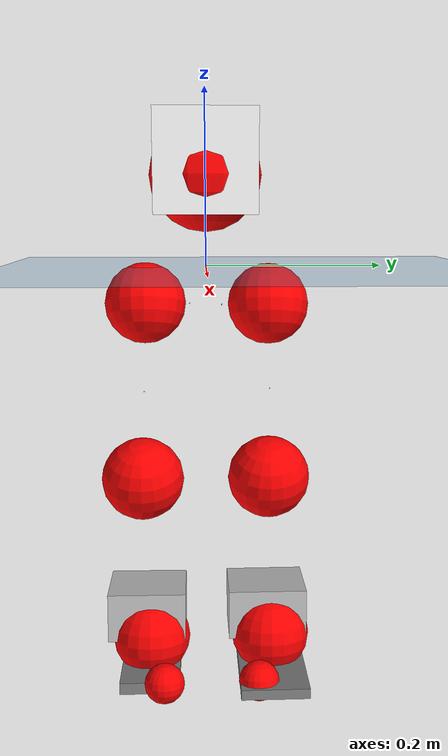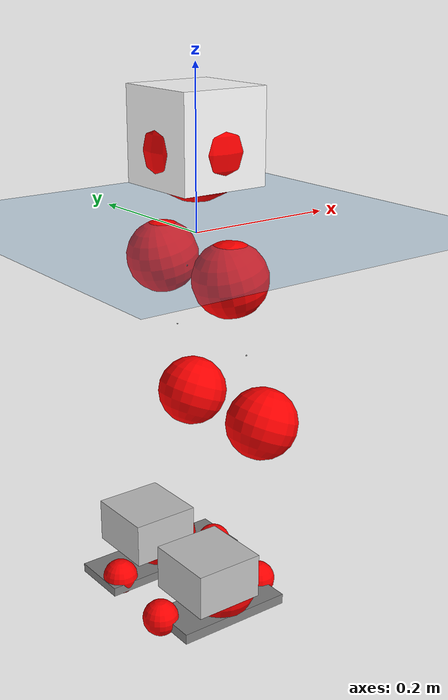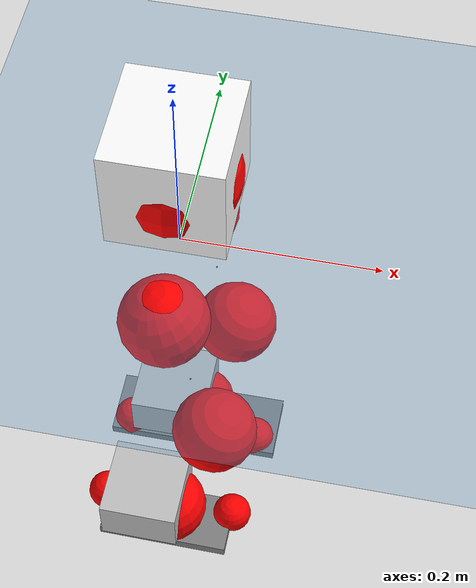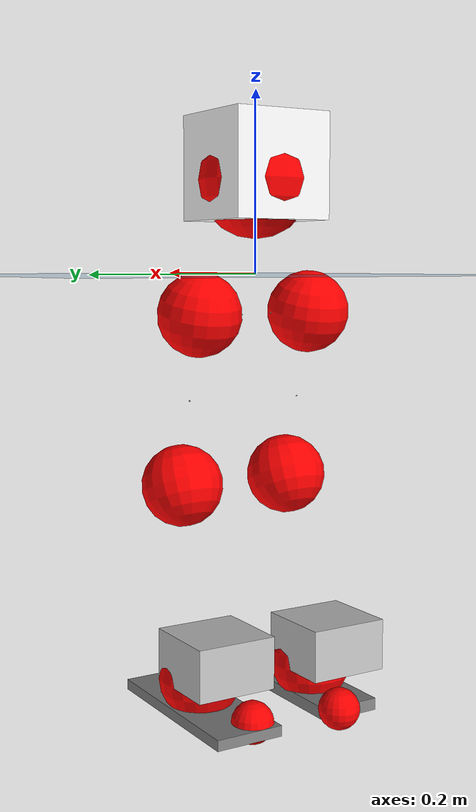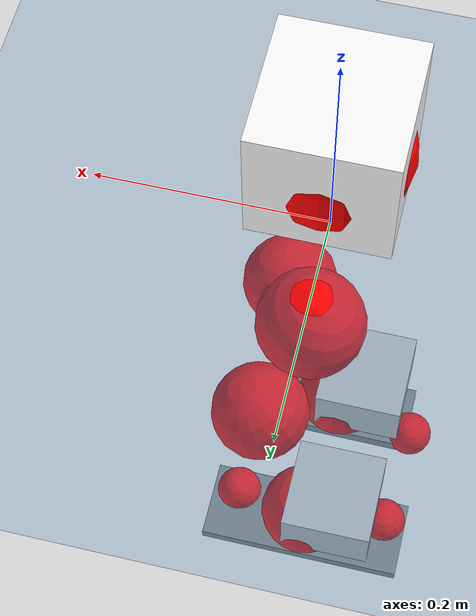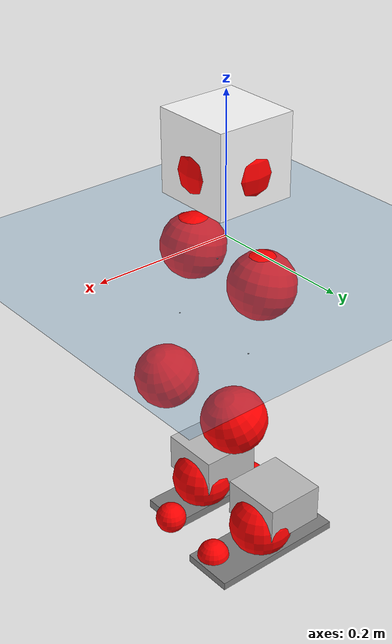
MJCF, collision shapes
<mujoco model="pi_12dof_release_v1">
  <compiler angle="radian" assetdir="assets" balanceinertia="true" inertiafromgeom="false"/>

  <option timestep="0.005" density="1.2" viscosity="2e-05"/>

  <size nkey="1"/>

  <visual>
    <quality shadowsize="8192"/>
    <map shadowclip="0.5"/>
  </visual>

  <default>
    <default class="/">
      <joint armature="0.01" damping="0.01" frictionloss="0.01"/>
      <geom contype="0" conaffinity="0" group="1" solref="-1000 -80"/>
      <site size="0.01 0.005 0.005" group="5"/>
      <general forcelimited="true" biastype="affine" gainprm="20" biasprm="0 -20 -0.5"/>
      <default class="foot">
        <geom size="0.0845 0.036 0.005" type="box" condim="6" group="4" priority="1" friction="0.9 0.2 0.2" solimp="0.015 1 0.005"/>
      </default>
      <default class="reward_collision_sphere">
        <geom group="5" rgba="1 0 0 1"/>
      </default>
    </default>
  </default>

  <asset>
    <texture type="skybox" colorspace="auto" name="//unnamed_texture_0" builtin="gradient" rgb1="0.95 0.95 0.95" rgb2="0.95 0.95 0.95" width="100" height="600"/>
    <texture type="2d" colorspace="auto" name="texplane" builtin="checker" rgb1="0.345 0.575 0.748" rgb2="0.345 0.575 0.748" markrgb="1 1 1" width="512" height="512"/>
    <material name="MatPlane" class="/" texture="texplane" texuniform="true" texrepeat="2 2" specular="0.9"/>
    <mesh name="baselink_1" class="/" file="baselink_1.STL"/>
    <mesh name="r_hip_pitch_link" class="/" file="r_hip_pitch_link.STL"/>
    <mesh name="r_hip_roll_link" class="/" file="r_hip_roll_link.STL"/>
    <mesh name="r_thigh_link" class="/" file="r_thigh_link.STL"/>
    <mesh name="r_calf_link" class="/" file="r_calf_link.STL"/>
    <mesh name="r_ankle_pitch_link" class="/" file="r_ankle_pitch_link.STL"/>
    <mesh name="r_ankle_roll_link" class="/" file="r_ankle_roll_link.STL"/>
    <mesh name="l_hip_pitch_link" class="/" file="l_hip_pitch_link.STL"/>
    <mesh name="l_hip_roll_link" class="/" file="l_hip_roll_link.STL"/>
    <mesh name="l_thigh_link" class="/" file="l_thigh_link.STL"/>
    <mesh name="l_calf_link" class="/" file="l_calf_link.STL"/>
    <mesh name="l_ankle_pitch_link" class="/" file="l_ankle_pitch_link.STL"/>
    <mesh name="l_ankle_roll_link" class="/" file="l_ankle_roll_link.STL"/>
  </asset>

  <worldbody>
    <geom name="floor" class="/" size="100 100 0.125" type="plane" group="0" material="MatPlane"/>
    <light name="toplight_shadow" class="/" pos="0 0 5" dir="0.0990148 0.0990148 -0.990148" type="directional" ambient="0.04 0.04 0.04" diffuse="0.55 0.55 0.55" specular="0.12 0.12 0.12"/>
    <light name="toplight_fill" class="/" pos="0 0 5" dir="0.0990148 0.0990148 -0.990148" type="directional" castshadow="false" ambient="0.04 0.04 0.04" diffuse="0.3 0.3 0.3" specular="0.08 0.08 0.08"/>
    <body name="trunk" pos="0.000148036 3.39348e-05 0.00196601" quat="1 -0.000215586 -0.000358912 9.26544e-05">
      <inertial pos="0.00458644 -0.00536897 0.0547485" quat="0.695225 0.00984633 0.00928712 0.718665" mass="3.43233" diaginertia="0.0198105 0.00474551 0.0245805"/>
      <joint name="//unnamed_joint_0" type="free"/>
      <geom name="//unnamed_geom_1" class="/" type="mesh" density="0" rgba="1 1 1 1" mesh="baselink_1"/>
      <geom name="//unnamed_geom_2" class="/" size="0.0578878 0.0578878 0.0578878" pos="0 0 0.114542" type="box" rgba="1 1 1 1"/>
      <geom name="//unnamed_geom_3" class="reward_collision_sphere" size="0.0636766" pos="0 0 0.100224"/>
      <site name="imu" class="/" pos="0.00764079 0.00130872 0.0065074" size="0.0115776"/>
      <camera name="track" class="/" pos="0 -1.75279 0" quat="0.707107 0.707107 0 0" mode="trackcom"/>
      <camera name="ego_camera" class="/" pos="0.0873823 0 0.25772" quat="-0.5 -0.5 0.5 0.5"/>
      <body name="r_hip_pitch_link" pos="-0.00218285 -0.0190968 -0.0447636" quat="0.992331 -0.000152923 -0.12361 -0.000169536">
        <inertial pos="0.00493642 -0.0515392 -0.000462376" quat="-0.0132003 0.71197 -0.0226393 0.70172" mass="0.545859" diaginertia="0.000228504 4.95391e-05 0.000485011"/>
        <joint name="r_hip_pitch_joint" class="/" pos="0 0 0" axis="0.0273093 -0.99959 -0.00855711" range="-1.79413 1.28092" armature="0.0117943" damping="0.0139614" frictionloss="0.0130077"/>
        <geom name="//unnamed_geom_4" class="/" type="mesh" density="0" rgba="0.75294 0.75294 0.75294 1" mesh="r_hip_pitch_link"/>
        <geom name="//unnamed_geom_5" class="/" size="0.000578878 0.000578878 0.000578878" type="box" rgba="0.75294 0.75294 0.75294 1"/>
        <body name="r_hip_roll_link" pos="0.000239903 -0.0505783 0.000483901" quat="1 7.6807e-05 0.000121976 -0.000183156">
          <inertial pos="-0.00125301 -0.00143424 -0.086733" quat="0.702619 -0.0762782 -0.081815 0.702719" mass="0.652913" diaginertia="0.000707497 0.000146279 0.000877573"/>
          <joint name="r_hip_roll_joint" class="/" pos="0 0 0" axis="-0.999906 0.013395 0.00277916" range="-0.115445 0.458235" armature="0.0101807" damping="0.0507298" frictionloss="0.0113189"/>
          <geom name="//unnamed_geom_6" class="/" type="mesh" density="0" rgba="0.75294 0.75294 0.75294 1" mesh="r_hip_roll_link"/>
          <geom name="//unnamed_geom_7" class="/" size="0.000578878 0.000578878 0.000578878" type="box" rgba="0.75294 0.75294 0.75294 1"/>
          <geom name="//unnamed_geom_8" class="reward_collision_sphere" size="0.0463103"/>
          <body name="r_thigh_link" pos="-0.00105463 -0.00165732 -0.101958" quat="0.999997 0.00102768 0.00176292 -0.00132723">
            <inertial pos="-0.000114114 0.000805851 -0.0682818" quat="0.73727 0.675598 0.000518195 0.000283461" mass="0.176965" diaginertia="0.000267202 5.06952e-05 0.000366351"/>
            <joint name="r_thigh_joint" class="/" pos="0 0 0" axis="-0.000740745 -0.0036798 -0.999993" range="-0.313167 0.634928" armature="0.0096248" damping="0.0068256" frictionloss="0.0116575"/>
            <geom name="//unnamed_geom_9" class="/" type="mesh" density="0" rgba="0.75294 0.75294 0.75294 1" mesh="r_thigh_link"/>
            <geom name="//unnamed_geom_10" class="/" size="0.000578878 0.000578878 0.000578878" type="box" rgba="0.75294 0.75294 0.75294 1"/>
            <body name="r_calf_link" pos="0.000903893 -0.001876 -0.0989105" quat="0.947603 -0.00152731 0.319445 -0.000570556">
              <inertial pos="-0.00137431 0.00167951 -0.102374" quat="0.999987 -0.000737237 0.000739273 0.00493597" mass="1.36384" diaginertia="0.0078131 0.00190455 0.00104538"/>
              <joint name="r_calf_joint" class="/" pos="0 0 0" axis="-0.0284656 -0.999492 0.0143157" range="-1.66629 0.633999" armature="0.0114773" damping="0.0158224" frictionloss="0.0104477"/>
              <geom name="//unnamed_geom_11" class="/" type="mesh" density="0" rgba="0.75294 0.75294 0.75294 1" mesh="r_calf_link"/>
              <geom name="//unnamed_geom_12" class="/" size="0.000578878 0.000578878 0.000578878" type="box" rgba="0.75294 0.75294 0.75294 1"/>
              <geom name="//unnamed_geom_13" class="reward_collision_sphere" size="0.0463103"/>
              <body name="r_ankle_pitch_link" pos="-0.00636362 -0.00041159 -0.200384" quat="0.98001 -0.000491327 -0.198948 -0.000653518">
                <inertial pos="0.00541142 0.000819384 -0.000378718" quat="-6.03572e-05 0.706522 -0.000333248 0.707691" mass="0.249948" diaginertia="0.000644031 0.000104224 0.000681263"/>
                <joint name="r_ankle_pitch_joint" class="/" pos="0 0 0" axis="0.00102966 -0.999998 -0.00173262" range="-1.27284 0.515398" armature="0.0110241" damping="0" frictionloss="0.00943679"/>
                <geom name="//unnamed_geom_14" class="/" type="mesh" density="0" rgba="0.75294 0.75294 0.75294 1" mesh="r_ankle_pitch_link"/>
                <geom name="//unnamed_geom_15" class="/" size="0.0451525 0.0463103 0.0289439" type="box" rgba="0.75294 0.75294 0.75294 1"/>
                <body name="r_ankle_roll_link" pos="0.0822546 0.00500194 -0.000563321" quat="0.999999 0.00023499 -0.000550337 -0.000932853">
                  <inertial pos="-0.0287844 -0.00211664 -0.026759" quat="0.566844 0.426895 0.435613 0.553796" mass="0.868931" diaginertia="0.00238941 0.000524281 0.00167709"/>
                  <joint name="r_ankle_roll_joint" class="/" pos="0 0 0" axis="-0.999992 0.00397092 -0.000113578" stiffness="0.00558275" range="-0.105771 0.104687" armature="0.0116779" damping="0.00767209" frictionloss="0.00784413"/>
                  <geom name="//unnamed_geom_16" class="/" type="mesh" density="0" rgba="0.75294 0.75294 0.75294 1" mesh="r_ankle_roll_link"/>
                  <geom name="//unnamed_geom_17" class="/" type="mesh" rgba="0.75294 0.75294 0.75294 1" mesh="r_ankle_roll_link"/>
                  <geom name="right_foot" class="foot" size="0.0775459 0.0346146 0.00671359" pos="-0.05942 0 -0.0629982"/>
                  <geom name="//unnamed_geom_19" class="reward_collision_sphere" size="0.0463103" pos="-0.0582549 0 -0.0286356"/>
                  <geom name="//unnamed_geom_20" class="reward_collision_sphere" size="0.0231551" pos="0.0174765 0.0175279 -0.0572711"/>
                  <geom name="//unnamed_geom_21" class="reward_collision_sphere" size="0.0231551" pos="-0.139812 0.0175279 -0.0572711"/>
                  <site name="right_foot" class="foot" pos="-0.05942 0 -0.0629982" size="0.0115776"/>
                </body>
              </body>
            </body>
          </body>
        </body>
      </body>
      <body name="l_hip_pitch_link" pos="-0.00156368 0.0178112 -0.0462978" quat="0.992324 0.000313015 -0.123664 0.000477417">
        <inertial pos="0.000695624 0.0513027 0.00220901" quat="-0.047587 0.682388 0.0463963 0.727963" mass="0.657228" diaginertia="0.000280674 5.33849e-05 0.000600063"/>
        <joint name="l_hip_pitch_joint" class="/" pos="0 0 0" axis="0.00661672 0.999938 -0.00894987" range="-1.30695 1.84695" armature="0.0110712" damping="0.00825369" frictionloss="0.0136082"/>
        <geom name="//unnamed_geom_22" class="/" type="mesh" density="0" rgba="0.75294 0.75294 0.75294 1" mesh="l_hip_pitch_link"/>
        <geom name="//unnamed_geom_23" class="/" size="0.000578878 0.000578878 0.000578878" type="box" rgba="0.75294 0.75294 0.75294 1"/>
        <body name="l_hip_roll_link" pos="0.00067846 0.0535907 0.000842391" quat="1 -7.11073e-05 -2.91382e-05 -9.9499e-05">
          <inertial pos="-0.00393733 0.00184916 -0.0859284" quat="0.702934 -0.0774904 -0.078668 0.702631" mass="0.586945" diaginertia="0.000650114 0.000134926 0.000726713"/>
          <joint name="l_hip_roll_joint" class="/" pos="0 0 0" axis="-0.999995 -0.00164535 -0.00279859" range="-0.634846 0.22024" armature="0.0126259" damping="0.00400007" frictionloss="0.0127599"/>
          <geom name="//unnamed_geom_24" class="/" type="mesh" density="0" rgba="0.75294 0.75294 0.75294 1" mesh="l_hip_roll_link"/>
          <geom name="//unnamed_geom_25" class="/" size="0.000578878 0.000578878 0.000578878" type="box" rgba="0.75294 0.75294 0.75294 1"/>
          <geom name="//unnamed_geom_26" class="reward_collision_sphere" size="0.0463103"/>
          <body name="l_thigh_link" pos="-0.00236744 0.000383388 -0.098243" quat="0.999999 0.000793523 0.000417952 0.00141086">
            <inertial pos="-0.00281768 -0.00297046 -0.0662271" quat="0.67515 0.737679 -0.00118321 -0.000352754" mass="0.167327" diaginertia="0.000238265 4.18165e-05 0.000287693"/>
            <joint name="l_thigh_joint" class="/" pos="0 0 0" axis="0.00626628 0.00800056 -0.999948" range="-0.56043 0.372246" armature="0.0111737" damping="0" frictionloss="0.0127325"/>
            <geom name="//unnamed_geom_27" class="/" type="mesh" density="0" rgba="0.75294 0.75294 0.75294 1" mesh="l_thigh_link"/>
            <geom name="//unnamed_geom_28" class="/" size="0.000578878 0.000578878 0.000578878" type="box" rgba="0.75294 0.75294 0.75294 1"/>
            <body name="l_calf_link" pos="-0.00290124 -0.00242965 -0.100575" quat="0.948208 -0.000691645 0.317649 -0.000494112">
              <inertial pos="0.00266882 0.00336699 -0.1004" quat="0.999264 0.0121735 0.0144615 0.0333788" mass="1.25096" diaginertia="0.00759028 0.00183367 0.0010728"/>
              <joint name="l_calf_joint" class="/" pos="0 0 0" axis="0.0104013 0.999935 0.00475345" range="-0.605582 1.64513" armature="0.0113931" damping="0.0187228" frictionloss="0.01225"/>
              <geom name="//unnamed_geom_29" class="/" type="mesh" density="0" rgba="0.75294 0.75294 0.75294 1" mesh="l_calf_link"/>
              <geom name="//unnamed_geom_30" class="/" size="0.000578878 0.000578878 0.000578878" type="box" rgba="0.75294 0.75294 0.75294 1"/>
              <geom name="//unnamed_geom_31" class="reward_collision_sphere" size="0.0463103"/>
              <body name="l_ankle_pitch_link" pos="-0.00145456 0.00176166 -0.194325" quat="0.979937 0.000888808 -0.199304 0.000525581">
                <inertial pos="0.00602176 -0.00770819 -0.000351165" quat="-0.0122584 0.713865 0.00582277 0.700152" mass="0.299492" diaginertia="0.000704344 0.000123779 0.000763602"/>
                <joint name="l_ankle_pitch_joint" class="/" pos="0 0 0" axis="0.0257953 0.999667 3.96109e-06" range="-0.506933 1.30162" armature="0.0117957" damping="0.0271887" frictionloss="0.0102828"/>
                <geom name="//unnamed_geom_32" class="/" type="mesh" density="0" rgba="0.75294 0.75294 0.75294 1" mesh="l_ankle_pitch_link"/>
                <geom name="//unnamed_geom_33" class="/" size="0.0451525 0.0463103 0.0289439" type="box" rgba="0.75294 0.75294 0.75294 1"/>
                <body name="l_ankle_roll_link" pos="0.0860284 0.00360468 0.000587982" quat="0.999999 -6.93166e-05 -0.000352616 -0.00109723">
                  <inertial pos="-0.0273151 -0.00154371 -0.0199858" quat="0.559751 0.419998 0.458441 0.547825" mass="0.849995" diaginertia="0.00249571 0.000519956 0.00155205"/>
                  <joint name="l_ankle_roll_joint" class="/" pos="0 0 0" axis="-0.999403 -0.0202789 -0.0279806" range="-0.135225 0.297141" armature="0.0111845" damping="0.021985" frictionloss="0.0154842"/>
                  <geom name="//unnamed_geom_34" class="/" type="mesh" density="0" rgba="0.75294 0.75294 0.75294 1" mesh="l_ankle_roll_link"/>
                  <geom name="//unnamed_geom_35" class="/" type="mesh" rgba="0.75294 0.75294 0.75294 1" mesh="l_ankle_roll_link"/>
                  <geom name="left_foot" class="foot" size="0.103724 0.0391869 0.00588836" pos="-0.05942 0 -0.0629982"/>
                  <geom name="//unnamed_geom_37" class="reward_collision_sphere" size="0.0463103" pos="-0.0582549 0 -0.0286356"/>
                  <geom name="//unnamed_geom_38" class="reward_collision_sphere" size="0.0231551" pos="0.0174765 -0.0175279 -0.0572711"/>
                  <geom name="//unnamed_geom_39" class="reward_collision_sphere" size="0.0231551" pos="-0.139812 -0.0175279 -0.0572711"/>
                  <site name="left_foot" class="foot" pos="-0.05942 0 -0.0629982" size="0.0115776"/>
                </body>
              </body>
            </body>
          </body>
        </body>
      </body>
    </body>
  </worldbody>

  <contact>
    <pair class="/" geom1="floor" geom2="right_foot" name="//unnamed_contact_1"/>
    <pair class="/" geom1="floor" geom2="left_foot" name="//unnamed_contact_0"/>
  </contact>

  <actuator>
    <general name="r_hip_pitch_joint" class="/" joint="r_hip_pitch_joint" forcerange="-26.1732 26.1732" gainprm="22.5945" biasprm="0 -22.5945 -0.615026"/>
    <general name="r_hip_roll_joint" class="/" joint="r_hip_roll_joint" forcerange="-23.8647 23.8647" gainprm="22.5945" biasprm="0 -22.5945 -0.615026"/>
    <general name="r_thigh_joint" class="/" joint="r_thigh_joint" forcerange="-25.1748 25.1748" gainprm="22.5945" biasprm="0 -22.5945 -0.615026"/>
    <general name="r_calf_joint" class="/" joint="r_calf_joint" forcerange="-25.7476 25.7476" gainprm="22.5945" biasprm="0 -22.5945 -0.615026"/>
    <general name="r_ankle_pitch_joint" class="/" joint="r_ankle_pitch_joint" forcerange="-23.2309 23.2309" gainprm="22.5945" biasprm="0 -22.5945 -0.615026"/>
    <general name="r_ankle_roll_joint" class="/" joint="r_ankle_roll_joint" forcerange="-20.0567 20.0567" gainprm="22.5945" biasprm="0 -22.5945 -0.615026"/>
    <general name="l_hip_pitch_joint" class="/" joint="l_hip_pitch_joint" forcerange="-24.6199 24.6199" gainprm="22.5945" biasprm="0 -22.5945 -0.615026"/>
    <general name="l_hip_roll_joint" class="/" joint="l_hip_roll_joint" forcerange="-30.3637 30.3637" gainprm="22.5945" biasprm="0 -22.5945 -0.615026"/>
    <general name="l_thigh_joint" class="/" joint="l_thigh_joint" forcerange="-26.2445 26.2445" gainprm="22.5945" biasprm="0 -22.5945 -0.615026"/>
    <general name="l_calf_joint" class="/" joint="l_calf_joint" forcerange="-22.622 22.622" gainprm="22.5945" biasprm="0 -22.5945 -0.615026"/>
    <general name="l_ankle_pitch_joint" class="/" joint="l_ankle_pitch_joint" forcerange="-25.6801 25.6801" gainprm="22.5945" biasprm="0 -22.5945 -0.615026"/>
    <general name="l_ankle_roll_joint" class="/" joint="l_ankle_roll_joint" forcerange="-23.8599 23.8599" gainprm="22.5945" biasprm="0 -22.5945 -0.615026"/>
  </actuator>

  <sensor>
    <gyro site="imu" name="imu_angular_velocity"/>
    <velocimeter site="imu" name="imu_linear_velocity"/>
    <framelinvel objtype="site" objname="left_foot" name="left_foot_global_linear_velocity"/>
    <framelinvel objtype="site" objname="right_foot" name="right_foot_global_linear_velocity"/>
  </sensor>

  <keyframe>
    <key name="home" qpos="0 0 0.291 1 0 0 0 0.4 0 0 -0.8 0.4 0 -0.4 0 0 0.8 -0.4 0"/>
  </keyframe>
</mujoco>
